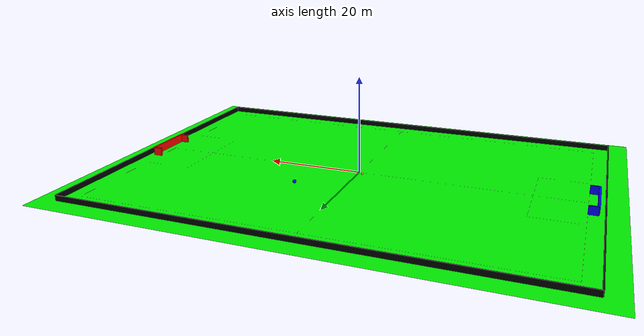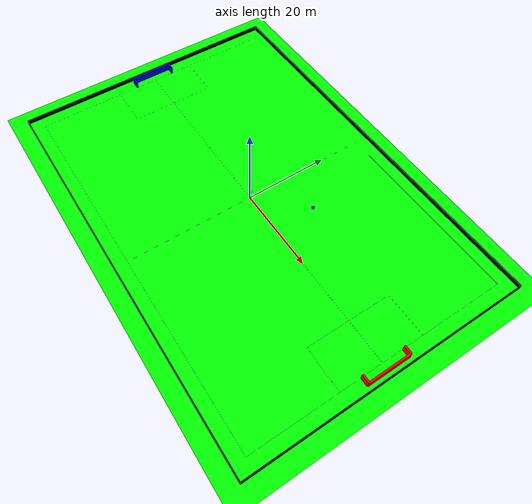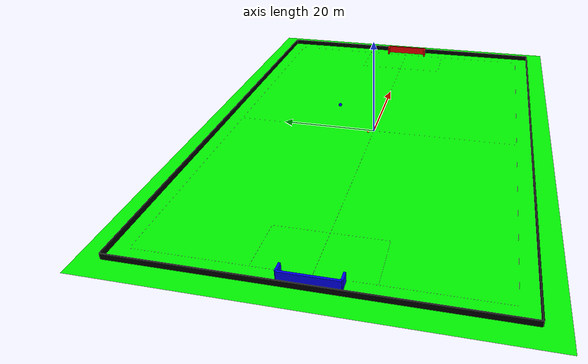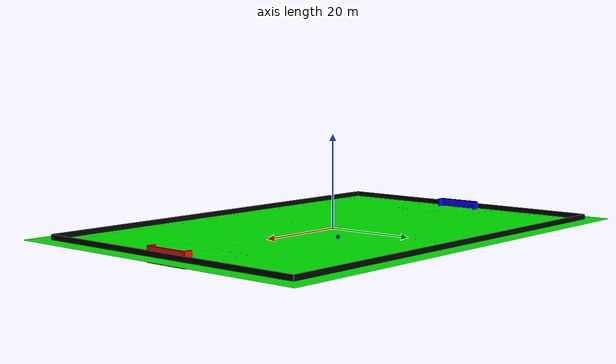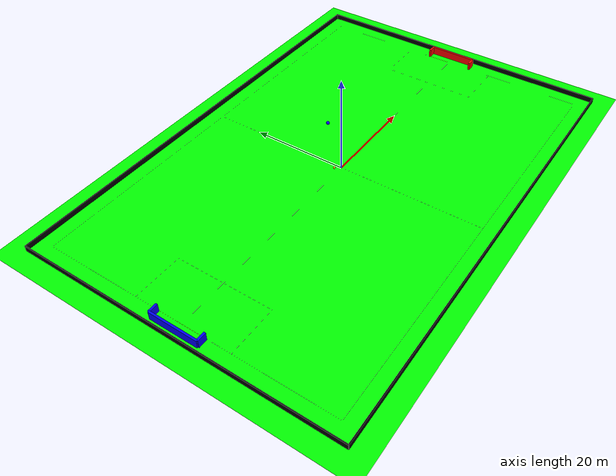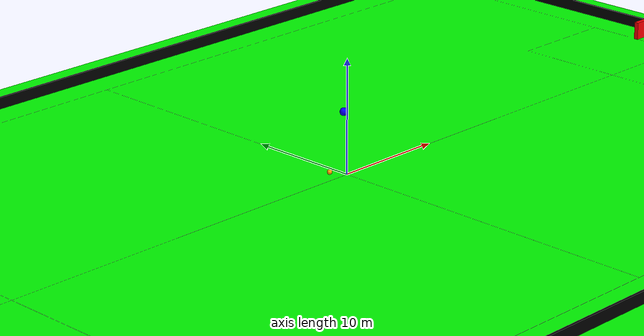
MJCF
<mujoco>

	<default>
		<geom contype="1" conaffinity="1" condim="3" friction=".5 .02 .02" />
	</default>

	<worldbody>

		<body name="arena">

			<geom name="field" type="plane" size="52 37 0.1" pos="0 0 0" rgba="0 1 0 1" />

			<geom name="boundary_S" type="box" size="48 0.1 1" pos="0 33 0" rgba="0 0 0 1" mass="1000" />
			<geom name="boundary_N" type="box" size="48 0.1 1" pos="0 -33 0" rgba="0 0 0 1" mass="1000" />
			<geom name="boundary_W" type="box" size="33 0.1 1" pos="48 0 0" rgba="0 0 0 1" euler="0 0 90" mass="1000" />
			<geom name="boundary_E" type="box" size="33 0.1 1" pos="-48 0 0" rgba="0 0 0 1" euler="0 0 90" mass="1000" />

			<geom name="goalE_W" type="box" size="5 0.2 1.6" pos="46.8 0 0" rgba="1 0 0 1" euler="0 0 90" />
			<geom name="goalE_S" type="box" size="0.9 0.2 1.6" pos="45.9 5 0" rgba="1 0 0 1" />
			<geom name="goalE_N" type="box" size="0.9 0.2 1.6" pos="45.9 -5 0" rgba="1 0 0 1" />

			<geom name="goalW_E" type="box" size="5 0.2 1.6" pos="-46.8 0 0" rgba="0 0 1 1" euler="0 0 90" />
			<geom name="goalW_S" type="box" size="0.9 0.2 1.6" pos="-45.9 5 0" rgba="0 0 1 1" />
			<geom name="goalW_N" type="box" size="0.9 0.2 1.6" pos="-45.9 -5 0" rgba="0 0 1 1" />

			<geom name="line_S" type="box" size="0.001 45 0.01" pos="0 30 0" rgba="255 255 255 1" euler="90 0 90" />
			<geom name="line_N" type="box" size="0.001 45 0.01" pos="0 -30 0" rgba="255 255 255 1" euler="90 0 90" />
			<geom name="line_goalE" type="box" size="0.001 5 0.01" pos="-45 0 0" rgba="255 255 0 1" euler="0 90 0" />
			<geom name="line_goalE_N" type="box" size="0.001 12 0.01" pos="-45 -18 0" rgba="255 255 255 1" euler="0 90 0" />
			<geom name="line_goalE_S" type="box" size="0.001 12 0.01" pos="-45 18 0" rgba="255 255 255 1" euler="0 90 0" />
			<geom name="line_goalW" type="box" size="0.001 5 0.01" pos="45 0 0" rgba="255 255 0 1" euler="0 90 0" />
			<geom name="line_goalW_N" type="box" size="0.001 12 0.01" pos="45 -18 0" rgba="255 255 255 1" euler="0 90 0" />
			<geom name="line_goalW_S" type="box" size="0.001 12 0.01" pos="45 18 0" rgba="255 255 255 1" euler="0 90 0" />

			<geom name="line_halfway" type="box" size="0.001 30 0.01" pos="0 0 0" rgba="255 255 255 1" euler="0 90 0" />
			<geom name="line_goal2goal" type="box" size="0.001 45 0.01" pos="0 0 0" rgba="255 255 255 1" euler="90 0 90" />

			<geom name="line_defenceW_S" type="box" size="0.001 5 0.01" pos="40 10 0" rgba="255 255 255 1" euler="90 0 90" />
			<geom name="line_defenceW_N" type="box" size="0.001 5 0.01" pos="40 -10 0" rgba="255 255 255 1" euler="90 0 90" />
			<geom name="line_defenceW_E" type="box" size="0.001 10 0.01" pos="35 0 0" rgba="255 255 255 1" euler="0 90 0" />

			<geom name="line_defenceE_S" type="box" size="0.001 5 0.01" pos="-40 10 0" rgba="255 255 255 1" euler="90 0 90" />
			<geom name="line_defenceE_N" type="box" size="0.001 5 0.01" pos="-40 -10 0" rgba="255 255 255 1" euler="90 0 90" />
			<geom name="line_defenceE_W" type="box" size="0.001 10 0.01" pos="-35 0 0" rgba="255 255 255 1" euler="0 90 0" />

		</body>

		<body name="ball" pos="-1 1 0.215">
			<geom name="ball" type="sphere" size="0.215" rgba="1 0.647 0 1" mass="2.77" friction="1" />
			<joint name="ball" type="free" />
		</body>

		<body name="home_player_1" pos="10 10 0.365">
			<geom name="home_player_1" type="sphere" size="0.365" rgba="0 0 1 1" mass="200" density="100" />
			<joint name="home_player_1" type="free" />
		</body>

	</worldbody>
</mujoco>
